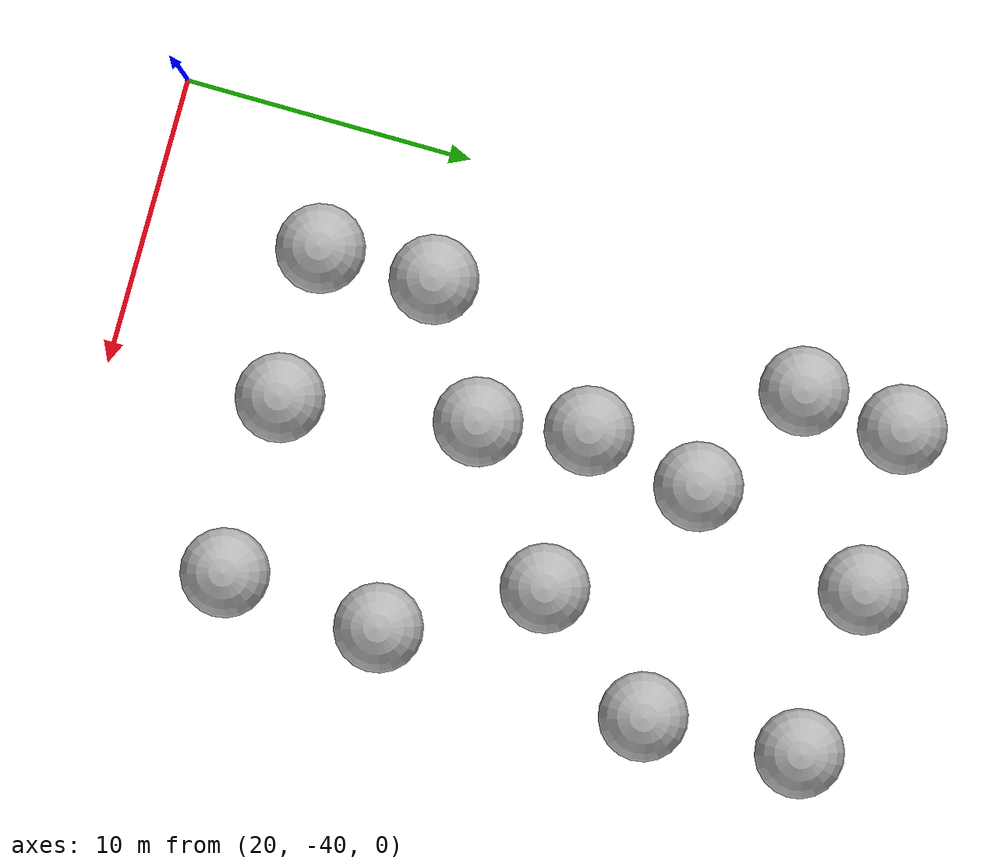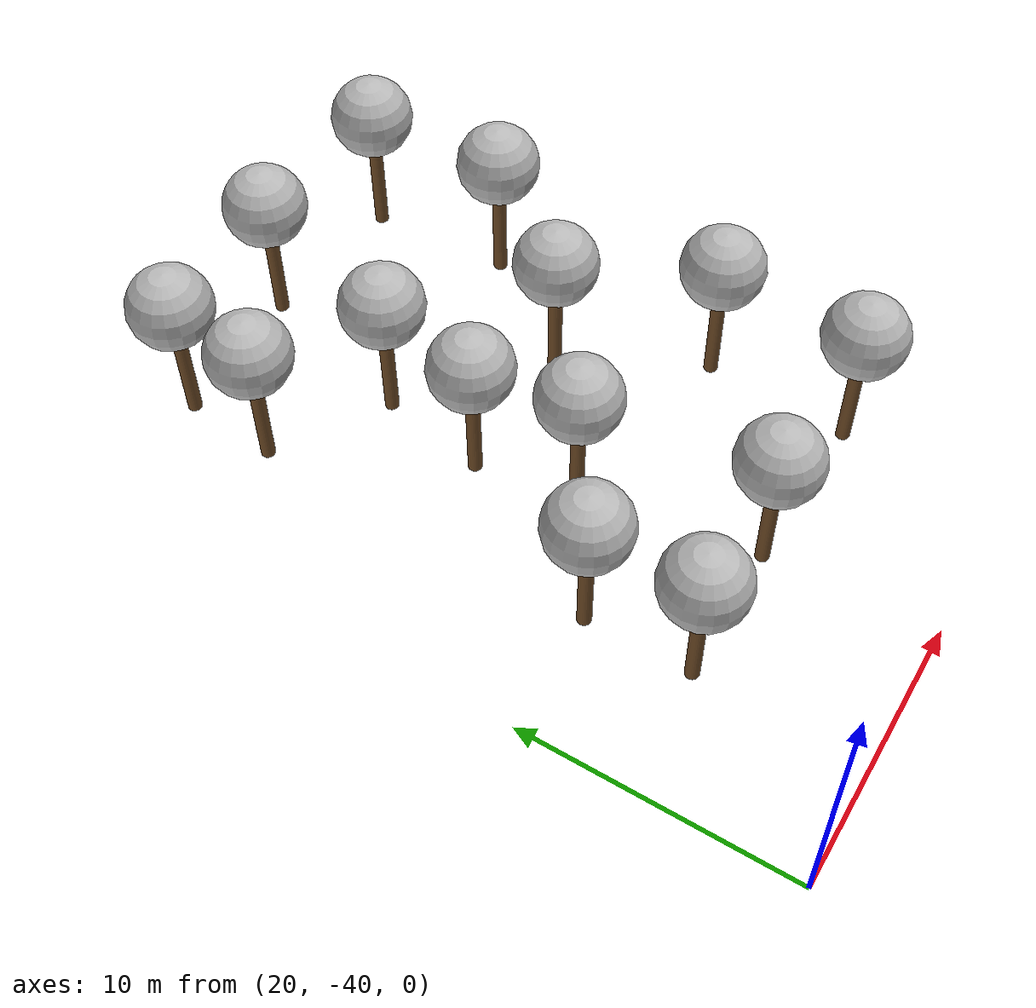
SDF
<sdf version="1.7">
 <world name="default">
  <model name="tree_red_0">
   <static>1</static>
   <link name="link">
    <pose>0 0 0.1 0 -0 0</pose>
    <inertial>
     <mass>666</mass>
     <inertia>
      <ixx>0.0861167</ixx>
      <ixy>0</ixy>
      <ixz>0</ixz>
      <iyy>0.0861167</iyy>
      <iyz>0</iyz>
      <izz>0.0861167</izz>
     </inertia>
    </inertial>
    <collision name="collision_trunk">
     <pose>0 0 2 0 -0 0</pose>
     <geometry><cylinder><radius>0.25</radius><length>4</length></cylinder></geometry>
     <surface>
      <contact>
       <poissons_ratio>0.347</poissons_ratio>
       <elastic_modulus>8.8e+09</elastic_modulus>
       <ode><kp>100000</kp><kd>100</kd><max_vel>100</max_vel><min_depth>0.001</min_depth></ode>
      </contact>
      <friction>
       <torsional>
        <coefficient>1</coefficient>
        <use_patch_radius>0</use_patch_radius>
        <surface_radius>0.01</surface_radius>
       </torsional>
      </friction>
     </surface>
    </collision>
    <collision name="collision_treetop">
     <pose>0 0 5.2 0 -0 0</pose>
     <geometry><sphere><radius>1.5</radius></sphere></geometry>
     <surface>
      <contact>
       <poissons_ratio>0.347</poissons_ratio>
       <elastic_modulus>8.8e+09</elastic_modulus>
       <ode><kp>100000</kp><kd>100</kd><max_vel>100</max_vel><min_depth>0.001</min_depth></ode>
      </contact>
      <friction>
       <torsional>
        <coefficient>1</coefficient>
        <use_patch_radius>0</use_patch_radius>
        <surface_radius>0.01</surface_radius>
       </torsional>
      </friction>
     </surface>
    </collision>
    <visual name="trunk">
     <pose>0 0 2 0 -0 0</pose>
     <geometry><cylinder><radius>0.25</radius><length>4</length></cylinder></geometry>
     <material>
      <script>
       <uri>model://MRS_tree_simples_fire/scripts</uri>
       <uri>model://MRS_tree_simples_fire/materials/textures</uri>
       <name>MRS_tree_simples_fire/Trunk</name>
      </script>
     </material>
    </visual>
    <visual name="treetop">
     <pose>0 0 5.2 0 -0 0</pose>
     <geometry><sphere><radius>1.5</radius></sphere></geometry>
     <material>
      <script>
       <uri>model://MRS_tree_simples_fire/scripts</uri>
       <uri>model://MRS_tree_simples_fire/materials/textures</uri>
       <name>MRS_tree_simples_fire/Treetop</name>
      </script>
     </material>
    </visual>
   </link>
   <pose>27.879 -23.6661 0 0 -0 0</pose>
  </model>
  <model name="tree_yellow">
   <static>1</static>
   <link name="link">
    <pose>0 0 0.1 0 -0 0</pose>
    <inertial>
     <mass>666</mass>
     <inertia>
      <ixx>0.0861167</ixx>
      <ixy>0</ixy>
      <ixz>0</ixz>
      <iyy>0.0861167</iyy>
      <iyz>0</iyz>
      <izz>0.0861167</izz>
     </inertia>
    </inertial>
    <collision name="collision_trunk">
     <pose>0 0 2 0 -0 0</pose>
     <geometry><cylinder><radius>0.25</radius><length>4</length></cylinder></geometry>
     <surface>
      <contact>
       <poissons_ratio>0.347</poissons_ratio>
       <elastic_modulus>8.8e+09</elastic_modulus>
       <ode><kp>100000</kp><kd>100</kd><max_vel>100</max_vel><min_depth>0.001</min_depth></ode>
      </contact>
      <friction>
       <torsional>
        <coefficient>1</coefficient>
        <use_patch_radius>0</use_patch_radius>
        <surface_radius>0.01</surface_radius>
       </torsional>
      </friction>
     </surface>
    </collision>
    <collision name="collision_treetop">
     <pose>0 0 5.2 0 -0 0</pose>
     <geometry><sphere><radius>1.5</radius></sphere></geometry>
     <surface>
      <contact>
       <poissons_ratio>0.347</poissons_ratio>
       <elastic_modulus>8.8e+09</elastic_modulus>
       <ode><kp>100000</kp><kd>100</kd><max_vel>100</max_vel><min_depth>0.001</min_depth></ode>
      </contact>
      <friction>
       <torsional>
        <coefficient>1</coefficient>
        <use_patch_radius>0</use_patch_radius>
        <surface_radius>0.01</surface_radius>
       </torsional>
      </friction>
     </surface>
    </collision>
    <visual name="trunk">
     <pose>0 0 2 0 -0 0</pose>
     <geometry><cylinder><radius>0.25</radius><length>4</length></cylinder></geometry>
     <material>
      <script>
       <uri>model://MRS_tree_simples_close/scripts</uri>
       <uri>model://MRS_tree_simples_close/materials/textures</uri>
       <name>MRS_tree_simples_close/Trunk</name>
      </script>
     </material>
    </visual>
    <visual name="treetop">
     <pose>0 0 5.2 0 -0 0</pose>
     <geometry><sphere><radius>1.5</radius></sphere></geometry>
     <material>
      <script>
       <uri>model://MRS_tree_simples_close/scripts</uri>
       <uri>model://MRS_tree_simples_close/materials/textures</uri>
       <name>MRS_tree_simples_close/Treetop</name>
      </script>
     </material>
    </visual>
   </link>
   <pose>28.5899 -27.2833 0 0 -0 0</pose>
  </model>
  <model name="tree_yellow_0">
   <static>1</static>
   <link name="link">
    <pose>0 0 0.1 0 -0 0</pose>
    <inertial>
     <mass>666</mass>
     <inertia>
      <ixx>0.0861167</ixx>
      <ixy>0</ixy>
      <ixz>0</ixz>
      <iyy>0.0861167</iyy>
      <iyz>0</iyz>
      <izz>0.0861167</izz>
     </inertia>
    </inertial>
    <collision name="collision_trunk">
     <pose>0 0 2 0 -0 0</pose>
     <geometry><cylinder><radius>0.25</radius><length>4</length></cylinder></geometry>
     <surface>
      <contact>
       <poissons_ratio>0.347</poissons_ratio>
       <elastic_modulus>8.8e+09</elastic_modulus>
       <ode><kp>100000</kp><kd>100</kd><max_vel>100</max_vel><min_depth>0.001</min_depth></ode>
      </contact>
      <friction>
       <torsional>
        <coefficient>1</coefficient>
        <use_patch_radius>0</use_patch_radius>
        <surface_radius>0.01</surface_radius>
       </torsional>
      </friction>
     </surface>
    </collision>
    <collision name="collision_treetop">
     <pose>0 0 5.2 0 -0 0</pose>
     <geometry><sphere><radius>1.5</radius></sphere></geometry>
     <surface>
      <contact>
       <poissons_ratio>0.347</poissons_ratio>
       <elastic_modulus>8.8e+09</elastic_modulus>
       <ode><kp>100000</kp><kd>100</kd><max_vel>100</max_vel><min_depth>0.001</min_depth></ode>
      </contact>
      <friction>
       <torsional>
        <coefficient>1</coefficient>
        <use_patch_radius>0</use_patch_radius>
        <surface_radius>0.01</surface_radius>
       </torsional>
      </friction>
     </surface>
    </collision>
    <visual name="trunk">
     <pose>0 0 2 0 -0 0</pose>
     <geometry><cylinder><radius>0.25</radius><length>4</length></cylinder></geometry>
     <material>
      <script>
       <uri>model://MRS_tree_simples_close/scripts</uri>
       <uri>model://MRS_tree_simples_close/materials/textures</uri>
       <name>MRS_tree_simples_close/Trunk</name>
      </script>
     </material>
    </visual>
    <visual name="treetop">
     <pose>0 0 5.2 0 -0 0</pose>
     <geometry><sphere><radius>1.5</radius></sphere></geometry>
     <material>
      <script>
       <uri>model://MRS_tree_simples_close/scripts</uri>
       <uri>model://MRS_tree_simples_close/materials/textures</uri>
       <name>MRS_tree_simples_close/Treetop</name>
      </script>
     </material>
    </visual>
   </link>
   <pose>28.6671 -19.6801 0 0 -0 0</pose>
  </model>
  <model name="tree_yellow_1">
   <static>1</static>
   <link name="link">
    <pose>0 0 0.1 0 -0 0</pose>
    <inertial>
     <mass>666</mass>
     <inertia>
      <ixx>0.0861167</ixx>
      <ixy>0</ixy>
      <ixz>0</ixz>
      <iyy>0.0861167</iyy>
      <iyz>0</iyz>
      <izz>0.0861167</izz>
     </inertia>
    </inertial>
    <collision name="collision_trunk">
     <pose>0 0 2 0 -0 0</pose>
     <geometry><cylinder><radius>0.25</radius><length>4</length></cylinder></geometry>
     <surface>
      <contact>
       <poissons_ratio>0.347</poissons_ratio>
       <elastic_modulus>8.8e+09</elastic_modulus>
       <ode><kp>100000</kp><kd>100</kd><max_vel>100</max_vel><min_depth>0.001</min_depth></ode>
      </contact>
      <friction>
       <torsional>
        <coefficient>1</coefficient>
        <use_patch_radius>0</use_patch_radius>
        <surface_radius>0.01</surface_radius>
       </torsional>
      </friction>
     </surface>
    </collision>
    <collision name="collision_treetop">
     <pose>0 0 5.2 0 -0 0</pose>
     <geometry><sphere><radius>1.5</radius></sphere></geometry>
     <surface>
      <contact>
       <poissons_ratio>0.347</poissons_ratio>
       <elastic_modulus>8.8e+09</elastic_modulus>
       <ode><kp>100000</kp><kd>100</kd><max_vel>100</max_vel><min_depth>0.001</min_depth></ode>
      </contact>
      <friction>
       <torsional>
        <coefficient>1</coefficient>
        <use_patch_radius>0</use_patch_radius>
        <surface_radius>0.01</surface_radius>
       </torsional>
      </friction>
     </surface>
    </collision>
    <visual name="trunk">
     <pose>0 0 2 0 -0 0</pose>
     <geometry><cylinder><radius>0.25</radius><length>4</length></cylinder></geometry>
     <material>
      <script>
       <uri>model://MRS_tree_simples_close/scripts</uri>
       <uri>model://MRS_tree_simples_close/materials/textures</uri>
       <name>MRS_tree_simples_close/Trunk</name>
      </script>
     </material>
    </visual>
    <visual name="treetop">
     <pose>0 0 5.2 0 -0 0</pose>
     <geometry><sphere><radius>1.5</radius></sphere></geometry>
     <material>
      <script>
       <uri>model://MRS_tree_simples_close/scripts</uri>
       <uri>model://MRS_tree_simples_close/materials/textures</uri>
       <name>MRS_tree_simples_close/Treetop</name>
      </script>
     </material>
    </visual>
   </link>
   <pose>33.2853 -23.6571 0 0 -0 0</pose>
  </model>
  <model name="tree_yellow_2">
   <static>1</static>
   <link name="link">
    <pose>0 0 0.1 0 -0 0</pose>
    <inertial>
     <mass>666</mass>
     <inertia>
      <ixx>0.0861167</ixx>
      <ixy>0</ixy>
      <ixz>0</ixz>
      <iyy>0.0861167</iyy>
      <iyz>0</iyz>
      <izz>0.0861167</izz>
     </inertia>
    </inertial>
    <collision name="collision_trunk">
     <pose>0 0 2 0 -0 0</pose>
     <geometry><cylinder><radius>0.25</radius><length>4</length></cylinder></geometry>
     <surface>
      <contact>
       <poissons_ratio>0.347</poissons_ratio>
       <elastic_modulus>8.8e+09</elastic_modulus>
       <ode><kp>100000</kp><kd>100</kd><max_vel>100</max_vel><min_depth>0.001</min_depth></ode>
      </contact>
      <friction>
       <torsional>
        <coefficient>1</coefficient>
        <use_patch_radius>0</use_patch_radius>
        <surface_radius>0.01</surface_radius>
       </torsional>
      </friction>
     </surface>
    </collision>
    <collision name="collision_treetop">
     <pose>0 0 5.2 0 -0 0</pose>
     <geometry><sphere><radius>1.5</radius></sphere></geometry>
     <surface>
      <contact>
       <poissons_ratio>0.347</poissons_ratio>
       <elastic_modulus>8.8e+09</elastic_modulus>
       <ode><kp>100000</kp><kd>100</kd><max_vel>100</max_vel><min_depth>0.001</min_depth></ode>
      </contact>
      <friction>
       <torsional>
        <coefficient>1</coefficient>
        <use_patch_radius>0</use_patch_radius>
        <surface_radius>0.01</surface_radius>
       </torsional>
      </friction>
     </surface>
    </collision>
    <visual name="trunk">
     <pose>0 0 2 0 -0 0</pose>
     <geometry><cylinder><radius>0.25</radius><length>4</length></cylinder></geometry>
     <material>
      <script>
       <uri>model://MRS_tree_simples_close/scripts</uri>
       <uri>model://MRS_tree_simples_close/materials/textures</uri>
       <name>MRS_tree_simples_close/Trunk</name>
      </script>
     </material>
    </visual>
    <visual name="treetop">
     <pose>0 0 5.2 0 -0 0</pose>
     <geometry><sphere><radius>1.5</radius></sphere></geometry>
     <material>
      <script>
       <uri>model://MRS_tree_simples_close/scripts</uri>
       <uri>model://MRS_tree_simples_close/materials/textures</uri>
       <name>MRS_tree_simples_close/Treetop</name>
      </script>
     </material>
    </visual>
   </link>
   <pose>24.6844 -17.1777 0 0 -0 0</pose>
  </model>
  <model name="tree_yellow_3">
   <static>1</static>
   <link name="link">
    <pose>0 0 0.1 0 -0 0</pose>
    <inertial>
     <mass>666</mass>
     <inertia>
      <ixx>0.0861167</ixx>
      <ixy>0</ixy>
      <ixz>0</ixz>
      <iyy>0.0861167</iyy>
      <iyz>0</iyz>
      <izz>0.0861167</izz>
     </inertia>
    </inertial>
    <collision name="collision_trunk">
     <pose>0 0 2 0 -0 0</pose>
     <geometry><cylinder><radius>0.25</radius><length>4</length></cylinder></geometry>
     <surface>
      <contact>
       <poissons_ratio>0.347</poissons_ratio>
       <elastic_modulus>8.8e+09</elastic_modulus>
       <ode><kp>100000</kp><kd>100</kd><max_vel>100</max_vel><min_depth>0.001</min_depth></ode>
      </contact>
      <friction>
       <torsional>
        <coefficient>1</coefficient>
        <use_patch_radius>0</use_patch_radius>
        <surface_radius>0.01</surface_radius>
       </torsional>
      </friction>
     </surface>
    </collision>
    <collision name="collision_treetop">
     <pose>0 0 5.2 0 -0 0</pose>
     <geometry><sphere><radius>1.5</radius></sphere></geometry>
     <surface>
      <contact>
       <poissons_ratio>0.347</poissons_ratio>
       <elastic_modulus>8.8e+09</elastic_modulus>
       <ode><kp>100000</kp><kd>100</kd><max_vel>100</max_vel><min_depth>0.001</min_depth></ode>
      </contact>
      <friction>
       <torsional>
        <coefficient>1</coefficient>
        <use_patch_radius>0</use_patch_radius>
        <surface_radius>0.01</surface_radius>
       </torsional>
      </friction>
     </surface>
    </collision>
    <visual name="trunk">
     <pose>0 0 2 0 -0 0</pose>
     <geometry><cylinder><radius>0.25</radius><length>4</length></cylinder></geometry>
     <material>
      <script>
       <uri>model://MRS_tree_simples_close/scripts</uri>
       <uri>model://MRS_tree_simples_close/materials/textures</uri>
       <name>MRS_tree_simples_close/Trunk</name>
      </script>
     </material>
    </visual>
    <visual name="treetop">
     <pose>0 0 5.2 0 -0 0</pose>
     <geometry><sphere><radius>1.5</radius></sphere></geometry>
     <material>
      <script>
       <uri>model://MRS_tree_simples_close/scripts</uri>
       <uri>model://MRS_tree_simples_close/materials/textures</uri>
       <name>MRS_tree_simples_close/Treetop</name>
      </script>
     </material>
    </visual>
   </link>
   <pose>24.4539 -29.9627 0 0 -0 0</pose>
  </model>
  <model name="tree_green">
   <static>1</static>
   <link name="link">
    <pose>0 0 0.1 0 -0 0</pose>
    <inertial>
     <mass>666</mass>
     <inertia>
      <ixx>0.0861167</ixx>
      <ixy>0</ixy>
      <ixz>0</ixz>
      <iyy>0.0861167</iyy>
      <iyz>0</iyz>
      <izz>0.0861167</izz>
     </inertia>
    </inertial>
    <collision name="collision_trunk">
     <pose>0 0 2 0 -0 0</pose>
     <geometry><cylinder><radius>0.25</radius><length>4</length></cylinder></geometry>
     <surface>
      <contact>
       <poissons_ratio>0.347</poissons_ratio>
       <elastic_modulus>8.8e+09</elastic_modulus>
       <ode><kp>100000</kp><kd>100</kd><max_vel>100</max_vel><min_depth>0.001</min_depth></ode>
      </contact>
      <friction>
       <torsional>
        <coefficient>1</coefficient>
        <use_patch_radius>0</use_patch_radius>
        <surface_radius>0.01</surface_radius>
       </torsional>
      </friction>
     </surface>
    </collision>
    <collision name="collision_treetop">
     <pose>0 0 5.2 0 -0 0</pose>
     <geometry><sphere><radius>1.5</radius></sphere></geometry>
     <surface>
      <contact>
       <poissons_ratio>0.347</poissons_ratio>
       <elastic_modulus>8.8e+09</elastic_modulus>
       <ode><kp>100000</kp><kd>100</kd><max_vel>100</max_vel><min_depth>0.001</min_depth></ode>
      </contact>
      <friction>
       <torsional>
        <coefficient>1</coefficient>
        <use_patch_radius>0</use_patch_radius>
        <surface_radius>0.01</surface_radius>
       </torsional>
      </friction>
     </surface>
    </collision>
    <visual name="trunk">
     <pose>0 0 2 0 -0 0</pose>
     <geometry><cylinder><radius>0.25</radius><length>4</length></cylinder></geometry>
     <material>
      <script>
       <uri>model://MRS_tree_simple/scripts</uri>
       <uri>model://MRS_tree_simple/materials/textures</uri>
       <name>MRS_tree_simple/Trunk</name>
      </script>
     </material>
    </visual>
    <visual name="treetop">
     <pose>0 0 5.2 0 -0 0</pose>
     <geometry><sphere><radius>1.5</radius></sphere></geometry>
     <material>
      <script>
       <uri>model://MRS_tree_simple/scripts</uri>
       <uri>model://MRS_tree_simple/materials/textures</uri>
       <name>MRS_tree_simple/Treetop</name>
      </script>
     </material>
    </visual>
   </link>
   <pose>25.0186 -13.7023 0 0 -0 0</pose>
  </model>
  <model name="tree_green_0">
   <static>1</static>
   <link name="link">
    <pose>0 0 0.1 0 -0 0</pose>
    <inertial>
     <mass>666</mass>
     <inertia>
      <ixx>0.0861167</ixx>
      <ixy>0</ixy>
      <ixz>0</ixz>
      <iyy>0.0861167</iyy>
      <iyz>0</iyz>
      <izz>0.0861167</izz>
     </inertia>
    </inertial>
    <collision name="collision_trunk">
     <pose>0 0 2 0 -0 0</pose>
     <geometry><cylinder><radius>0.25</radius><length>4</length></cylinder></geometry>
     <surface>
      <contact>
       <poissons_ratio>0.347</poissons_ratio>
       <elastic_modulus>8.8e+09</elastic_modulus>
       <ode><kp>100000</kp><kd>100</kd><max_vel>100</max_vel><min_depth>0.001</min_depth></ode>
      </contact>
      <friction>
       <torsional>
        <coefficient>1</coefficient>
        <use_patch_radius>0</use_patch_radius>
        <surface_radius>0.01</surface_radius>
       </torsional>
      </friction>
     </surface>
    </collision>
    <collision name="collision_treetop">
     <pose>0 0 5.2 0 -0 0</pose>
     <geometry><sphere><radius>1.5</radius></sphere></geometry>
     <surface>
      <contact>
       <poissons_ratio>0.347</poissons_ratio>
       <elastic_modulus>8.8e+09</elastic_modulus>
       <ode><kp>100000</kp><kd>100</kd><max_vel>100</max_vel><min_depth>0.001</min_depth></ode>
      </contact>
      <friction>
       <torsional>
        <coefficient>1</coefficient>
        <use_patch_radius>0</use_patch_radius>
        <surface_radius>0.01</surface_radius>
       </torsional>
      </friction>
     </surface>
    </collision>
    <visual name="trunk">
     <pose>0 0 2 0 -0 0</pose>
     <geometry><cylinder><radius>0.25</radius><length>4</length></cylinder></geometry>
     <material>
      <script>
       <uri>model://MRS_tree_simple/scripts</uri>
       <uri>model://MRS_tree_simple/materials/textures</uri>
       <name>MRS_tree_simple/Trunk</name>
      </script>
     </material>
    </visual>
    <visual name="treetop">
     <pose>0 0 5.2 0 -0 0</pose>
     <geometry><sphere><radius>1.5</radius></sphere></geometry>
     <material>
      <script>
       <uri>model://MRS_tree_simple/scripts</uri>
       <uri>model://MRS_tree_simple/materials/textures</uri>
       <name>MRS_tree_simple/Treetop</name>
      </script>
     </material>
    </visual>
   </link>
   <pose>30.4772 -13.5121 0 0 -0 0</pose>
  </model>
  <model name="tree_green_1">
   <static>1</static>
   <link name="link">
    <pose>0 0 0.1 0 -0 0</pose>
    <inertial>
     <mass>666</mass>
     <inertia>
      <ixx>0.0861167</ixx>
      <ixy>0</ixy>
      <ixz>0</ixz>
      <iyy>0.0861167</iyy>
      <iyz>0</iyz>
      <izz>0.0861167</izz>
     </inertia>
    </inertial>
    <collision name="collision_trunk">
     <pose>0 0 2 0 -0 0</pose>
     <geometry><cylinder><radius>0.25</radius><length>4</length></cylinder></geometry>
     <surface>
      <contact>
       <poissons_ratio>0.347</poissons_ratio>
       <elastic_modulus>8.8e+09</elastic_modulus>
       <ode><kp>100000</kp><kd>100</kd><max_vel>100</max_vel><min_depth>0.001</min_depth></ode>
      </contact>
      <friction>
       <torsional>
        <coefficient>1</coefficient>
        <use_patch_radius>0</use_patch_radius>
        <surface_radius>0.01</surface_radius>
       </torsional>
      </friction>
     </surface>
    </collision>
    <collision name="collision_treetop">
     <pose>0 0 5.2 0 -0 0</pose>
     <geometry><sphere><radius>1.5</radius></sphere></geometry>
     <surface>
      <contact>
       <poissons_ratio>0.347</poissons_ratio>
       <elastic_modulus>8.8e+09</elastic_modulus>
       <ode><kp>100000</kp><kd>100</kd><max_vel>100</max_vel><min_depth>0.001</min_depth></ode>
      </contact>
      <friction>
       <torsional>
        <coefficient>1</coefficient>
        <use_patch_radius>0</use_patch_radius>
        <surface_radius>0.01</surface_radius>
       </torsional>
      </friction>
     </surface>
    </collision>
    <visual name="trunk">
     <pose>0 0 2 0 -0 0</pose>
     <geometry><cylinder><radius>0.25</radius><length>4</length></cylinder></geometry>
     <material>
      <script>
       <uri>model://MRS_tree_simple/scripts</uri>
       <uri>model://MRS_tree_simple/materials/textures</uri>
       <name>MRS_tree_simple/Trunk</name>
      </script>
     </material>
    </visual>
    <visual name="treetop">
     <pose>0 0 5.2 0 -0 0</pose>
     <geometry><sphere><radius>1.5</radius></sphere></geometry>
     <material>
      <script>
       <uri>model://MRS_tree_simple/scripts</uri>
       <uri>model://MRS_tree_simple/materials/textures</uri>
       <name>MRS_tree_simple/Treetop</name>
      </script>
     </material>
    </visual>
   </link>
   <pose>36.2543 -14.077 0 0 -0 0</pose>
  </model>
  <model name="tree_green_2">
   <static>1</static>
   <link name="link">
    <pose>0 0 0.1 0 -0 0</pose>
    <inertial>
     <mass>666</mass>
     <inertia>
      <ixx>0.0861167</ixx>
      <ixy>0</ixy>
      <ixz>0</ixz>
      <iyy>0.0861167</iyy>
      <iyz>0</iyz>
      <izz>0.0861167</izz>
     </inertia>
    </inertial>
    <collision name="collision_trunk">
     <pose>0 0 2 0 -0 0</pose>
     <geometry><cylinder><radius>0.25</radius><length>4</length></cylinder></geometry>
     <surface>
      <contact>
       <poissons_ratio>0.347</poissons_ratio>
       <elastic_modulus>8.8e+09</elastic_modulus>
       <ode><kp>100000</kp><kd>100</kd><max_vel>100</max_vel><min_depth>0.001</min_depth></ode>
      </contact>
      <friction>
       <torsional>
        <coefficient>1</coefficient>
        <use_patch_radius>0</use_patch_radius>
        <surface_radius>0.01</surface_radius>
       </torsional>
      </friction>
     </surface>
    </collision>
    <collision name="collision_treetop">
     <pose>0 0 5.2 0 -0 0</pose>
     <geometry><sphere><radius>1.5</radius></sphere></geometry>
     <surface>
      <contact>
       <poissons_ratio>0.347</poissons_ratio>
       <elastic_modulus>8.8e+09</elastic_modulus>
       <ode><kp>100000</kp><kd>100</kd><max_vel>100</max_vel><min_depth>0.001</min_depth></ode>
      </contact>
      <friction>
       <torsional>
        <coefficient>1</coefficient>
        <use_patch_radius>0</use_patch_radius>
        <surface_radius>0.01</surface_radius>
       </torsional>
      </friction>
     </surface>
    </collision>
    <visual name="trunk">
     <pose>0 0 2 0 -0 0</pose>
     <geometry><cylinder><radius>0.25</radius><length>4</length></cylinder></geometry>
     <material>
      <script>
       <uri>model://MRS_tree_simple/scripts</uri>
       <uri>model://MRS_tree_simple/materials/textures</uri>
       <name>MRS_tree_simple/Trunk</name>
      </script>
     </material>
    </visual>
    <visual name="treetop">
     <pose>0 0 5.2 0 -0 0</pose>
     <geometry><sphere><radius>1.5</radius></sphere></geometry>
     <material>
      <script>
       <uri>model://MRS_tree_simple/scripts</uri>
       <uri>model://MRS_tree_simple/materials/textures</uri>
       <name>MRS_tree_simple/Treetop</name>
      </script>
     </material>
    </visual>
   </link>
   <pose>36.484 -19.3802 0 0 -0 0</pose>
  </model>
  <model name="tree_green_3">
   <static>1</static>
   <link name="link">
    <pose>0 0 0.1 0 -0 0</pose>
    <inertial>
     <mass>666</mass>
     <inertia>
      <ixx>0.0861167</ixx>
      <ixy>0</ixy>
      <ixz>0</ixz>
      <iyy>0.0861167</iyy>
      <iyz>0</iyz>
      <izz>0.0861167</izz>
     </inertia>
    </inertial>
    <collision name="collision_trunk">
     <pose>0 0 2 0 -0 0</pose>
     <geometry><cylinder><radius>0.25</radius><length>4</length></cylinder></geometry>
     <surface>
      <contact>
       <poissons_ratio>0.347</poissons_ratio>
       <elastic_modulus>8.8e+09</elastic_modulus>
       <ode><kp>100000</kp><kd>100</kd><max_vel>100</max_vel><min_depth>0.001</min_depth></ode>
      </contact>
      <friction>
       <torsional>
        <coefficient>1</coefficient>
        <use_patch_radius>0</use_patch_radius>
        <surface_radius>0.01</surface_radius>
       </torsional>
      </friction>
     </surface>
    </collision>
    <collision name="collision_treetop">
     <pose>0 0 5.2 0 -0 0</pose>
     <geometry><sphere><radius>1.5</radius></sphere></geometry>
     <surface>
      <contact>
       <poissons_ratio>0.347</poissons_ratio>
       <elastic_modulus>8.8e+09</elastic_modulus>
       <ode><kp>100000</kp><kd>100</kd><max_vel>100</max_vel><min_depth>0.001</min_depth></ode>
      </contact>
      <friction>
       <torsional>
        <coefficient>1</coefficient>
        <use_patch_radius>0</use_patch_radius>
        <surface_radius>0.01</surface_radius>
       </torsional>
      </friction>
     </surface>
    </collision>
    <visual name="trunk">
     <pose>0 0 2 0 -0 0</pose>
     <geometry><cylinder><radius>0.25</radius><length>4</length></cylinder></geometry>
     <material>
      <script>
       <uri>model://MRS_tree_simple/scripts</uri>
       <uri>model://MRS_tree_simple/materials/textures</uri>
       <name>MRS_tree_simple/Trunk</name>
      </script>
     </material>
    </visual>
    <visual name="treetop">
     <pose>0 0 5.2 0 -0 0</pose>
     <geometry><sphere><radius>1.5</radius></sphere></geometry>
     <material>
      <script>
       <uri>model://MRS_tree_simple/scripts</uri>
       <uri>model://MRS_tree_simple/materials/textures</uri>
       <name>MRS_tree_simple/Treetop</name>
      </script>
     </material>
    </visual>
   </link>
   <pose>36.0337 -28.6001 0 0 -0 0</pose>
  </model>
  <model name="tree_green_4">
   <static>1</static>
   <link name="link">
    <pose>0 0 0.1 0 -0 0</pose>
    <inertial>
     <mass>666</mass>
     <inertia>
      <ixx>0.0861167</ixx>
      <ixy>0</ixy>
      <ixz>0</ixz>
      <iyy>0.0861167</iyy>
      <iyz>0</iyz>
      <izz>0.0861167</izz>
     </inertia>
    </inertial>
    <collision name="collision_trunk">
     <pose>0 0 2 0 -0 0</pose>
     <geometry><cylinder><radius>0.25</radius><length>4</length></cylinder></geometry>
     <surface>
      <contact>
       <poissons_ratio>0.347</poissons_ratio>
       <elastic_modulus>8.8e+09</elastic_modulus>
       <ode><kp>100000</kp><kd>100</kd><max_vel>100</max_vel><min_depth>0.001</min_depth></ode>
      </contact>
      <friction>
       <torsional>
        <coefficient>1</coefficient>
        <use_patch_radius>0</use_patch_radius>
        <surface_radius>0.01</surface_radius>
       </torsional>
      </friction>
     </surface>
    </collision>
    <collision name="collision_treetop">
     <pose>0 0 5.2 0 -0 0</pose>
     <geometry><sphere><radius>1.5</radius></sphere></geometry>
     <surface>
      <contact>
       <poissons_ratio>0.347</poissons_ratio>
       <elastic_modulus>8.8e+09</elastic_modulus>
       <ode><kp>100000</kp><kd>100</kd><max_vel>100</max_vel><min_depth>0.001</min_depth></ode>
      </contact>
      <friction>
       <torsional>
        <coefficient>1</coefficient>
        <use_patch_radius>0</use_patch_radius>
        <surface_radius>0.01</surface_radius>
       </torsional>
      </friction>
     </surface>
    </collision>
    <visual name="trunk">
     <pose>0 0 2 0 -0 0</pose>
     <geometry><cylinder><radius>0.25</radius><length>4</length></cylinder></geometry>
     <material>
      <script>
       <uri>model://MRS_tree_simple/scripts</uri>
       <uri>model://MRS_tree_simple/materials/textures</uri>
       <name>MRS_tree_simple/Trunk</name>
      </script>
     </material>
    </visual>
    <visual name="treetop">
     <pose>0 0 5.2 0 -0 0</pose>
     <geometry><sphere><radius>1.5</radius></sphere></geometry>
     <material>
      <script>
       <uri>model://MRS_tree_simple/scripts</uri>
       <uri>model://MRS_tree_simple/materials/textures</uri>
       <name>MRS_tree_simple/Treetop</name>
      </script>
     </material>
    </visual>
   </link>
   <pose>35.6626 -33.9826 0 0 -0 0</pose>
  </model>
  <model name="tree_green_5">
   <static>1</static>
   <link name="link">
    <pose>0 0 0.1 0 -0 0</pose>
    <inertial>
     <mass>666</mass>
     <inertia>
      <ixx>0.0861167</ixx>
      <ixy>0</ixy>
      <ixz>0</ixz>
      <iyy>0.0861167</iyy>
      <iyz>0</iyz>
      <izz>0.0861167</izz>
     </inertia>
    </inertial>
    <collision name="collision_trunk">
     <pose>0 0 2 0 -0 0</pose>
     <geometry><cylinder><radius>0.25</radius><length>4</length></cylinder></geometry>
     <surface>
      <contact>
       <poissons_ratio>0.347</poissons_ratio>
       <elastic_modulus>8.8e+09</elastic_modulus>
       <ode><kp>100000</kp><kd>100</kd><max_vel>100</max_vel><min_depth>0.001</min_depth></ode>
      </contact>
      <friction>
       <torsional>
        <coefficient>1</coefficient>
        <use_patch_radius>0</use_patch_radius>
        <surface_radius>0.01</surface_radius>
       </torsional>
      </friction>
     </surface>
    </collision>
    <collision name="collision_treetop">
     <pose>0 0 5.2 0 -0 0</pose>
     <geometry><sphere><radius>1.5</radius></sphere></geometry>
     <surface>
      <contact>
       <poissons_ratio>0.347</poissons_ratio>
       <elastic_modulus>8.8e+09</elastic_modulus>
       <ode><kp>100000</kp><kd>100</kd><max_vel>100</max_vel><min_depth>0.001</min_depth></ode>
      </contact>
      <friction>
       <torsional>
        <coefficient>1</coefficient>
        <use_patch_radius>0</use_patch_radius>
        <surface_radius>0.01</surface_radius>
       </torsional>
      </friction>
     </surface>
    </collision>
    <visual name="trunk">
     <pose>0 0 2 0 -0 0</pose>
     <geometry><cylinder><radius>0.25</radius><length>4</length></cylinder></geometry>
     <material>
      <script>
       <uri>model://MRS_tree_simple/scripts</uri>
       <uri>model://MRS_tree_simple/materials/textures</uri>
       <name>MRS_tree_simple/Trunk</name>
      </script>
     </material>
    </visual>
    <visual name="treetop">
     <pose>0 0 5.2 0 -0 0</pose>
     <geometry><sphere><radius>1.5</radius></sphere></geometry>
     <material>
      <script>
       <uri>model://MRS_tree_simple/scripts</uri>
       <uri>model://MRS_tree_simple/materials/textures</uri>
       <name>MRS_tree_simple/Treetop</name>
      </script>
     </material>
    </visual>
   </link>
   <pose>29.5979 -33.8042 0 0 -0 0</pose>
  </model>
  <model name="tree_green_6">
   <static>1</static>
   <link name="link">
    <pose>0 0 0.1 0 -0 0</pose>
    <inertial>
     <mass>666</mass>
     <inertia>
      <ixx>0.0861167</ixx>
      <ixy>0</ixy>
      <ixz>0</ixz>
      <iyy>0.0861167</iyy>
      <iyz>0</iyz>
      <izz>0.0861167</izz>
     </inertia>
    </inertial>
    <collision name="collision_trunk">
     <pose>0 0 2 0 -0 0</pose>
     <geometry><cylinder><radius>0.25</radius><length>4</length></cylinder></geometry>
     <surface>
      <contact>
       <poissons_ratio>0.347</poissons_ratio>
       <elastic_modulus>8.8e+09</elastic_modulus>
       <ode><kp>100000</kp><kd>100</kd><max_vel>100</max_vel><min_depth>0.001</min_depth></ode>
      </contact>
      <friction>
       <torsional>
        <coefficient>1</coefficient>
        <use_patch_radius>0</use_patch_radius>
        <surface_radius>0.01</surface_radius>
       </torsional>
      </friction>
     </surface>
    </collision>
    <collision name="collision_treetop">
     <pose>0 0 5.2 0 -0 0</pose>
     <geometry><sphere><radius>1.5</radius></sphere></geometry>
     <surface>
      <contact>
       <poissons_ratio>0.347</poissons_ratio>
       <elastic_modulus>8.8e+09</elastic_modulus>
       <ode><kp>100000</kp><kd>100</kd><max_vel>100</max_vel><min_depth>0.001</min_depth></ode>
      </contact>
      <friction>
       <torsional>
        <coefficient>1</coefficient>
        <use_patch_radius>0</use_patch_radius>
        <surface_radius>0.01</surface_radius>
       </torsional>
      </friction>
     </surface>
    </collision>
    <visual name="trunk">
     <pose>0 0 2 0 -0 0</pose>
     <geometry><cylinder><radius>0.25</radius><length>4</length></cylinder></geometry>
     <material>
      <script>
       <uri>model://MRS_tree_simple/scripts</uri>
       <uri>model://MRS_tree_simple/materials/textures</uri>
       <name>MRS_tree_simple/Trunk</name>
      </script>
     </material>
    </visual>
    <visual name="treetop">
     <pose>0 0 5.2 0 -0 0</pose>
     <geometry><sphere><radius>1.5</radius></sphere></geometry>
     <material>
      <script>
       <uri>model://MRS_tree_simple/scripts</uri>
       <uri>model://MRS_tree_simple/materials/textures</uri>
       <name>MRS_tree_simple/Treetop</name>
      </script>
     </material>
    </visual>
   </link>
   <pose>24.4852 -33.8548 0 0 -0 0</pose>
  </model>
 </world>
</sdf>
